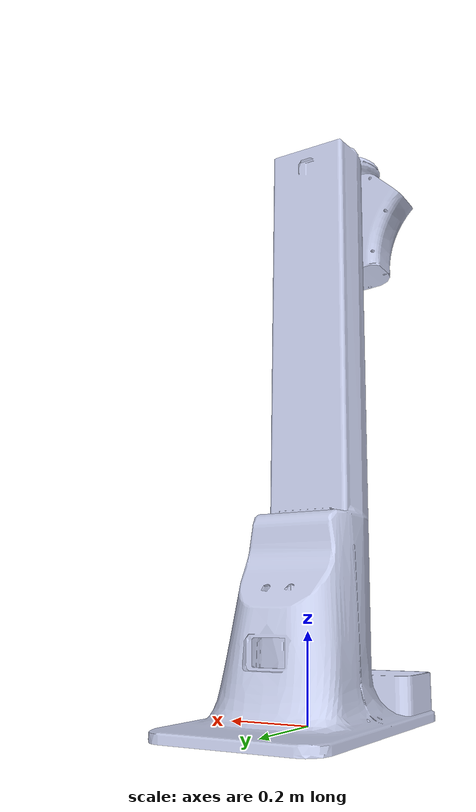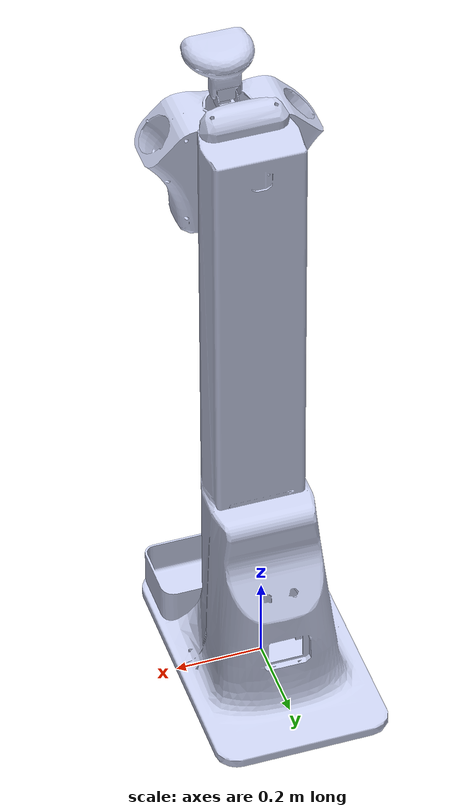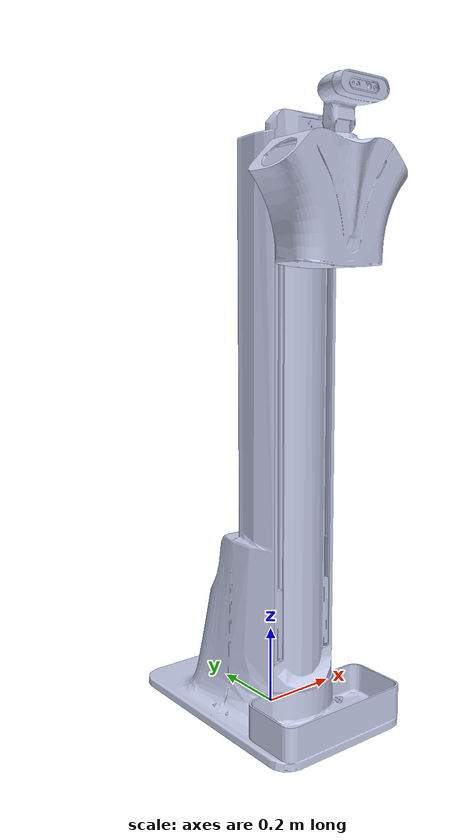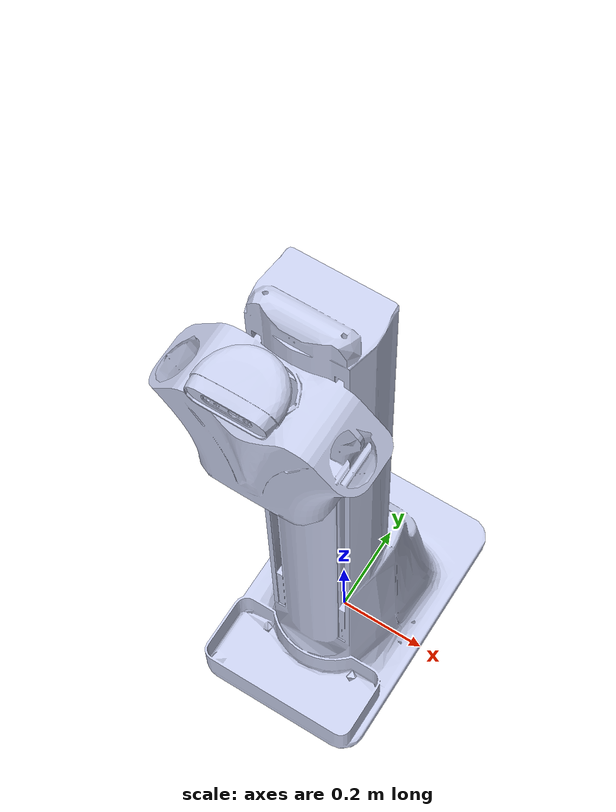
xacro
<?xml version="1.0"?>
<robot name="body_head_platform" xmlns:xacro="http://www.ros.org/wiki/xacro">
  <xacro:property name="mesh_path" value="file://$(find aidal_description)/meshes/body/"/>
  <xacro:macro name="visual_collision" params="mesh">
    <visual>
      <geometry>
        <mesh filename="${mesh_path}${mesh}" />
      </geometry>
      <material name="">
        <color rgba="0.79216 0.81961 0.93333 1" />
      </material>
    </visual>
    <collision>
      <geometry>
        <mesh filename="${mesh_path}${mesh}" />
      </geometry>
    </collision>
  </xacro:macro>
  <link name="body_base_link">
    <inertial>
      <origin xyz="-0.0002128 -0.02749 0.37118" />
      <mass value="12.159"/>
      <inertia
          ixx="0.69175"
          ixy="3.0303E-06"
          ixz="-1.7947E-05"
          iyy="0.68839"
          iyz="0.012363"
          izz="0.15316"/>
    </inertial>
    <xacro:visual_collision mesh="body_base_link.obj"/>
  </link>
  <link name="platform_base_link">
    <inertial>
      <origin xyz="-4.8033E-05 -0.05292 0.00070789" />
      <mass value="2.8992"/>
      <inertia
          ixx="0.013327"
          ixy="3.14E-06"
          ixz="3.5257E-06"
          iyy="0.032331"
          iyz="6.163E-05"
          izz="0.021546"/>
    </inertial>
    <xacro:visual_collision mesh="platform_body.obj"/>
  </link>
  <link name="head_link1">
    <inertial>
      <origin xyz="-0.00017562 -0.015989 0.024926" />
      <mass value="0.049513"/>
      <inertia
          ixx="1.6251E-05"
          ixy="-4.4281E-09"
          ixz="7.808E-08"
          iyy="2.2171E-05"
          iyz="-4.661E-07"
          izz="1.3605E-05"/>
    </inertial>
    <xacro:visual_collision mesh="head_link1.obj"/>
  </link>
  <link name="head_link2">
    <inertial>
      <origin xyz="-0.00051349 -0.027144 0.0551" />
      <mass value="0.23639"/>
      <inertia
          ixx="0.00025664"
          ixy="-1.6537E-08"
          ixz="1.3993E-07"
          iyy="0.0005615"
          iyz="1.8036E-05"
          izz="0.00052625"/>
    </inertial>
    <xacro:visual_collision mesh="head_link2.obj"/>
  </link>
  <link name="camera_link">
    <inertial>
      <origin xyz="0.0016556 -0.01252 1.2156E-05" />
      <mass value="0.049778"/>
      <inertia
          ixx="4.8577E-06"
          ixy="4.3442E-07"
          ixz="-6.2436E-10"
          iyy="3.075E-05"
          iyz="6.4645E-10"
          izz="3.0901E-05"/>
    </inertial>
    <xacro:visual_collision mesh="d435.obj"/>
  </link>

  <joint name="platform_joint" type="prismatic">
    <origin xyz="0 -0.11663 1.271" />
    <parent link="body_base_link"/>
    <child link="platform_base_link"/>
    <axis xyz="0 0 -1"/>
    <limit lower="0" upper="1" effort="60" velocity="0.15"/>
  </joint>
  <joint name="head_joint1" type="revolute">
    <origin xyz="0 -0.1018 0.126" />
    <parent link="platform_base_link"/>
    <child link="head_link1"/>
    <axis xyz="0 0 1"/>
    <limit lower="-1.256" upper="1.256" effort="2" velocity="1.57"/>
  </joint>
  <joint name="head_joint2" type="revolute">
    <origin xyz="0 -0.02 0.044" />
    <parent link="head_link1"/>
    <child link="head_link2"/>
    <axis xyz="-1 0 0"/>
    <limit lower="-0.419" upper="0.419" effort="2" velocity="1.57"/>
  </joint>
  <joint name="camera_joint" type="fixed">
    <origin xyz="-0.0002391 -0.076866 0.061606" rpy="-1.5708 0 3.14159"/>
    <parent link="head_link2"/>
    <child link="camera_link"/>
    <axis xyz="0 0 0"/>
  </joint>
</robot>
